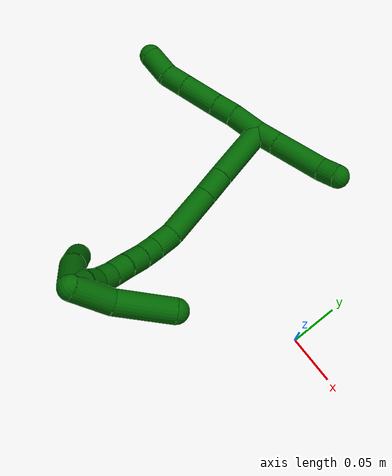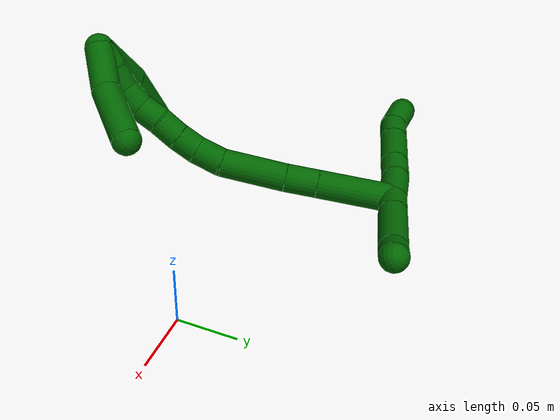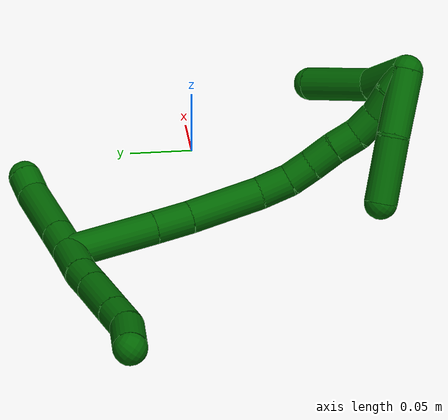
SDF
<sdf version="1.7">
 <world name="default">
  <model name="6">
   <static>0</static>
   <link name="6">
    <collision name="collision-cylinder-e_1_2_8">
     <pose>0.015216 -0.004068 0.005239 0.660273 1.15968 0.441551</pose>
     <geometry><cylinder><radius>0.0125</radius><length>0.033197</length></cylinder></geometry>
     <surface>
      <friction><ode><mu>1.16</mu><mu2>1.16</mu2><slip1>0</slip1><slip2>0</slip2></ode></friction>
      <contact><ode><kp>1e+06</kp><kd>1</kd><max_vel>0</max_vel><min_depth>0.001</min_depth></ode></contact>
     </surface>
    </collision>
    <visual name="visual-cylinder-e_1_2_8">
     <pose>0.015216 -0.004068 0.005239 0.660273 1.15968 0.441551</pose>
     <geometry><cylinder><radius>0.0125</radius><length>0.033197</length></cylinder></geometry>
     <material><ambient>0 0.392157 0.003922 1</ambient></material>
    </visual>
    <collision name="collision-cylinder-e_2_8_9">
     <pose>0.040438 -0.012026 0.014777 0.735477 1.04575 0.437031</pose>
     <geometry><cylinder><radius>0.0125</radius><length>0.02313</length></cylinder></geometry>
     <surface>
      <friction><ode><mu>1.16</mu><mu2>1.16</mu2><slip1>0</slip1><slip2>0</slip2></ode></friction>
      <contact><ode><kp>1e+06</kp><kd>1</kd><max_vel>0</max_vel><min_depth>0.001</min_depth></ode></contact>
     </surface>
    </collision>
    <visual name="visual-cylinder-e_2_8_9">
     <pose>0.040438 -0.012026 0.014777 0.735477 1.04575 0.437031</pose>
     <geometry><cylinder><radius>0.0125</radius><length>0.02313</length></cylinder></geometry>
     <material><ambient>0 0.392157 0.003922 1</ambient></material>
    </visual>
    <collision name="collision-cylinder-e_3_9_10">
     <pose>0.068207 -0.02264 0.026295 0.749903 1.06374 0.455154</pose>
     <geometry><cylinder><radius>0.0125</radius><length>0.040637</length></cylinder></geometry>
     <surface>
      <friction><ode><mu>1.16</mu><mu2>1.16</mu2><slip1>0</slip1><slip2>0</slip2></ode></friction>
      <contact><ode><kp>1e+06</kp><kd>1</kd><max_vel>0</max_vel><min_depth>0.001</min_depth></ode></contact>
     </surface>
    </collision>
    <visual name="visual-cylinder-e_3_9_10">
     <pose>0.068207 -0.02264 0.026295 0.749903 1.06374 0.455154</pose>
     <geometry><cylinder><radius>0.0125</radius><length>0.040637</length></cylinder></geometry>
     <material><ambient>0 0.392157 0.003922 1</ambient></material>
    </visual>
    <collision name="collision-cylinder-e_4_10_11">
     <pose>0.096035 -0.033203 0.037631 0.750495 1.06107 0.454193</pose>
     <geometry><cylinder><radius>0.0125</radius><length>0.023064</length></cylinder></geometry>
     <surface>
      <friction><ode><mu>1.16</mu><mu2>1.16</mu2><slip1>0</slip1><slip2>0</slip2></ode></friction>
      <contact><ode><kp>1e+06</kp><kd>1</kd><max_vel>0</max_vel><min_depth>0.001</min_depth></ode></contact>
     </surface>
    </collision>
    <visual name="visual-cylinder-e_4_10_11">
     <pose>0.096035 -0.033203 0.037631 0.750495 1.06107 0.454193</pose>
     <geometry><cylinder><radius>0.0125</radius><length>0.023064</length></cylinder></geometry>
     <material><ambient>0 0.392157 0.003922 1</ambient></material>
    </visual>
    <collision name="collision-cylinder-e_5_11_6">
     <pose>0.120806 -0.039189 0.04368 0.837805 1.3767 0.702163</pose>
     <geometry><cylinder><radius>0.0125</radius><length>0.029972</length></cylinder></geometry>
     <surface>
      <friction><ode><mu>1.16</mu><mu2>1.16</mu2><slip1>0</slip1><slip2>0</slip2></ode></friction>
      <contact><ode><kp>1e+06</kp><kd>1</kd><max_vel>0</max_vel><min_depth>0.001</min_depth></ode></contact>
     </surface>
    </collision>
    <visual name="visual-cylinder-e_5_11_6">
     <pose>0.120806 -0.039189 0.04368 0.837805 1.3767 0.702163</pose>
     <geometry><cylinder><radius>0.0125</radius><length>0.029972</length></cylinder></geometry>
     <material><ambient>0 0.392157 0.003922 1</ambient></material>
    </visual>
    <collision name="collision-cylinder-e_1_2_12">
     <pose>-0.010552 0.002591 -0.005 -2.66343 -1.08055 2.36962</pose>
     <geometry><cylinder><radius>0.0125</radius><length>0.023921</length></cylinder></geometry>
     <surface>
      <friction><ode><mu>1.16</mu><mu2>1.16</mu2><slip1>0</slip1><slip2>0</slip2></ode></friction>
      <contact><ode><kp>1e+06</kp><kd>1</kd><max_vel>0</max_vel><min_depth>0.001</min_depth></ode></contact>
     </surface>
    </collision>
    <visual name="visual-cylinder-e_1_2_12">
     <pose>-0.010552 0.002591 -0.005 -2.66343 -1.08055 2.36962</pose>
     <geometry><cylinder><radius>0.0125</radius><length>0.023921</length></cylinder></geometry>
     <material><ambient>0 0.392157 0.003922 1</ambient></material>
    </visual>
    <collision name="collision-cylinder-e_2_12_13">
     <pose>-0.045788 0.011277 -0.02171 -2.66172 -1.0797 2.36635</pose>
     <geometry><cylinder><radius>0.0125</radius><length>0.055987</length></cylinder></geometry>
     <surface>
      <friction><ode><mu>1.16</mu><mu2>1.16</mu2><slip1>0</slip1><slip2>0</slip2></ode></friction>
      <contact><ode><kp>1e+06</kp><kd>1</kd><max_vel>0</max_vel><min_depth>0.001</min_depth></ode></contact>
     </surface>
    </collision>
    <visual name="visual-cylinder-e_2_12_13">
     <pose>-0.045788 0.011277 -0.02171 -2.66172 -1.0797 2.36635</pose>
     <geometry><cylinder><radius>0.0125</radius><length>0.055987</length></cylinder></geometry>
     <material><ambient>0 0.392157 0.003922 1</ambient></material>
    </visual>
    <collision name="collision-cylinder-e_3_13_5">
     <pose>-0.078884 0.017557 -0.038912 -3.10798 -0.992124 3.0795</pose>
     <geometry><cylinder><radius>0.0125</radius><length>0.020092</length></cylinder></geometry>
     <surface>
      <friction><ode><mu>1.16</mu><mu2>1.16</mu2><slip1>0</slip1><slip2>0</slip2></ode></friction>
      <contact><ode><kp>1e+06</kp><kd>1</kd><max_vel>0</max_vel><min_depth>0.001</min_depth></ode></contact>
     </surface>
    </collision>
    <visual name="visual-cylinder-e_3_13_5">
     <pose>-0.078884 0.017557 -0.038912 -3.10798 -0.992124 3.0795</pose>
     <geometry><cylinder><radius>0.0125</radius><length>0.020092</length></cylinder></geometry>
     <material><ambient>0 0.392157 0.003922 1</ambient></material>
    </visual>
    <collision name="collision-cylinder-e_1_2_14">
     <pose>-0.014454 -0.021154 0.021222 0.783775 -0.449449 -0.188373</pose>
     <geometry><cylinder><radius>0.0125</radius><length>0.066537</length></cylinder></geometry>
     <surface>
      <friction><ode><mu>1.16</mu><mu2>1.16</mu2><slip1>0</slip1><slip2>0</slip2></ode></friction>
      <contact><ode><kp>1e+06</kp><kd>1</kd><max_vel>0</max_vel><min_depth>0.001</min_depth></ode></contact>
     </surface>
    </collision>
    <visual name="visual-cylinder-e_1_2_14">
     <pose>-0.014454 -0.021154 0.021222 0.783775 -0.449449 -0.188373</pose>
     <geometry><cylinder><radius>0.0125</radius><length>0.066537</length></cylinder></geometry>
     <material><ambient>0 0.392157 0.003922 1</ambient></material>
    </visual>
    <collision name="collision-cylinder-e_2_14_15">
     <pose>-0.035235 -0.051316 0.051371 0.789963 -0.462751 -0.195806</pose>
     <geometry><cylinder><radius>0.0125</radius><length>0.028345</length></cylinder></geometry>
     <surface>
      <friction><ode><mu>1.16</mu><mu2>1.16</mu2><slip1>0</slip1><slip2>0</slip2></ode></friction>
      <contact><ode><kp>1e+06</kp><kd>1</kd><max_vel>0</max_vel><min_depth>0.001</min_depth></ode></contact>
     </surface>
    </collision>
    <visual name="visual-cylinder-e_2_14_15">
     <pose>-0.035235 -0.051316 0.051371 0.789963 -0.462751 -0.195806</pose>
     <geometry><cylinder><radius>0.0125</radius><length>0.028345</length></cylinder></geometry>
     <material><ambient>0 0.392157 0.003922 1</ambient></material>
    </visual>
    <collision name="collision-cylinder-e_3_15_16">
     <pose>-0.054198 -0.079582 0.077268 0.848469 -0.457471 -0.209532</pose>
     <geometry><cylinder><radius>0.0125</radius><length>0.05722</length></cylinder></geometry>
     <surface>
      <friction><ode><mu>1.16</mu><mu2>1.16</mu2><slip1>0</slip1><slip2>0</slip2></ode></friction>
      <contact><ode><kp>1e+06</kp><kd>1</kd><max_vel>0</max_vel><min_depth>0.001</min_depth></ode></contact>
     </surface>
    </collision>
    <visual name="visual-cylinder-e_3_15_16">
     <pose>-0.054198 -0.079582 0.077268 0.848469 -0.457471 -0.209532</pose>
     <geometry><cylinder><radius>0.0125</radius><length>0.05722</length></cylinder></geometry>
     <material><ambient>0 0.392157 0.003922 1</ambient></material>
    </visual>
    <collision name="collision-cylinder-e_4_16_17">
     <pose>-0.070404 -0.108879 0.100252 1.03103 -0.296035 -0.168574</pose>
     <geometry><cylinder><radius>0.0125</radius><length>0.024469</length></cylinder></geometry>
     <surface>
      <friction><ode><mu>1.16</mu><mu2>1.16</mu2><slip1>0</slip1><slip2>0</slip2></ode></friction>
      <contact><ode><kp>1e+06</kp><kd>1</kd><max_vel>0</max_vel><min_depth>0.001</min_depth></ode></contact>
     </surface>
    </collision>
    <visual name="visual-cylinder-e_4_16_17">
     <pose>-0.070404 -0.108879 0.100252 1.03103 -0.296035 -0.168574</pose>
     <geometry><cylinder><radius>0.0125</radius><length>0.024469</length></cylinder></geometry>
     <material><ambient>0 0.392157 0.003922 1</ambient></material>
    </visual>
    <collision name="collision-cylinder-e_5_17_18">
     <pose>-0.076878 -0.127994 0.109343 1.24402 -0.294302 -0.211741</pose>
     <geometry><cylinder><radius>0.0125</radius><length>0.020028</length></cylinder></geometry>
     <surface>
      <friction><ode><mu>1.16</mu><mu2>1.16</mu2><slip1>0</slip1><slip2>0</slip2></ode></friction>
      <contact><ode><kp>1e+06</kp><kd>1</kd><max_vel>0</max_vel><min_depth>0.001</min_depth></ode></contact>
     </surface>
    </collision>
    <visual name="visual-cylinder-e_5_17_18">
     <pose>-0.076878 -0.127994 0.109343 1.24402 -0.294302 -0.211741</pose>
     <geometry><cylinder><radius>0.0125</radius><length>0.020028</length></cylinder></geometry>
     <material><ambient>0 0.392157 0.003922 1</ambient></material>
    </visual>
    <collision name="collision-cylinder-e_6_18_19">
     <pose>-0.08223 -0.147197 0.115072 1.31455 -0.229633 -0.177534</pose>
     <geometry><cylinder><radius>0.0125</radius><length>0.021503</length></cylinder></geometry>
     <surface>
      <friction><ode><mu>1.16</mu><mu2>1.16</mu2><slip1>0</slip1><slip2>0</slip2></ode></friction>
      <contact><ode><kp>1e+06</kp><kd>1</kd><max_vel>0</max_vel><min_depth>0.001</min_depth></ode></contact>
     </surface>
    </collision>
    <visual name="visual-cylinder-e_6_18_19">
     <pose>-0.08223 -0.147197 0.115072 1.31455 -0.229633 -0.177534</pose>
     <geometry><cylinder><radius>0.0125</radius><length>0.021503</length></cylinder></geometry>
     <material><ambient>0 0.392157 0.003922 1</ambient></material>
    </visual>
    <collision name="collision-cylinder-e_7_19_20">
     <pose>-0.087066 -0.166492 0.121213 1.20728 -0.238902 -0.165133</pose>
     <geometry><cylinder><radius>0.0125</radius><length>0.020189</length></cylinder></geometry>
     <surface>
      <friction><ode><mu>1.16</mu><mu2>1.16</mu2><slip1>0</slip1><slip2>0</slip2></ode></friction>
      <contact><ode><kp>1e+06</kp><kd>1</kd><max_vel>0</max_vel><min_depth>0.001</min_depth></ode></contact>
     </surface>
    </collision>
    <visual name="visual-cylinder-e_7_19_20">
     <pose>-0.087066 -0.166492 0.121213 1.20728 -0.238902 -0.165133</pose>
     <geometry><cylinder><radius>0.0125</radius><length>0.020189</length></cylinder></geometry>
     <material><ambient>0 0.392157 0.003922 1</ambient></material>
    </visual>
    <collision name="collision-cylinder-e_8_20_21">
     <pose>-0.091347 -0.185901 0.12575 1.46864 -0.181765 -0.164168</pose>
     <geometry><cylinder><radius>0.0125</radius><length>0.020936</length></cylinder></geometry>
     <surface>
      <friction><ode><mu>1.16</mu><mu2>1.16</mu2><slip1>0</slip1><slip2>0</slip2></ode></friction>
      <contact><ode><kp>1e+06</kp><kd>1</kd><max_vel>0</max_vel><min_depth>0.001</min_depth></ode></contact>
     </surface>
    </collision>
    <visual name="visual-cylinder-e_8_20_21">
     <pose>-0.091347 -0.185901 0.12575 1.46864 -0.181765 -0.164168</pose>
     <geometry><cylinder><radius>0.0125</radius><length>0.020936</length></cylinder></geometry>
     <material><ambient>0 0.392157 0.003922 1</ambient></material>
    </visual>
    <collision name="collision-cylinder-e_9_21_22">
     <pose>-0.093962 -0.206174 0.125092 1.73945 -0.070899 -0.083978</pose>
     <geometry><cylinder><radius>0.0125</radius><length>0.020403</length></cylinder></geometry>
     <surface>
      <friction><ode><mu>1.16</mu><mu2>1.16</mu2><slip1>0</slip1><slip2>0</slip2></ode></friction>
      <contact><ode><kp>1e+06</kp><kd>1</kd><max_vel>0</max_vel><min_depth>0.001</min_depth></ode></contact>
     </surface>
    </collision>
    <visual name="visual-cylinder-e_9_21_22">
     <pose>-0.093962 -0.206174 0.125092 1.73945 -0.070899 -0.083978</pose>
     <geometry><cylinder><radius>0.0125</radius><length>0.020403</length></cylinder></geometry>
     <material><ambient>0 0.392157 0.003922 1</ambient></material>
    </visual>
    <collision name="collision-cylinder-e_10_22_1">
     <pose>-0.096539 -0.226186 0.122561 1.65304 -0.183121 -0.198736</pose>
     <geometry><cylinder><radius>0.0125</radius><length>0.02037</length></cylinder></geometry>
     <surface>
      <friction><ode><mu>1.16</mu><mu2>1.16</mu2><slip1>0</slip1><slip2>0</slip2></ode></friction>
      <contact><ode><kp>1e+06</kp><kd>1</kd><max_vel>0</max_vel><min_depth>0.001</min_depth></ode></contact>
     </surface>
    </collision>
    <visual name="visual-cylinder-e_10_22_1">
     <pose>-0.096539 -0.226186 0.122561 1.65304 -0.183121 -0.198736</pose>
     <geometry><cylinder><radius>0.0125</radius><length>0.02037</length></cylinder></geometry>
     <material><ambient>0 0.392157 0.003922 1</ambient></material>
    </visual>
    <collision name="collision-cylinder-e_1_1_23">
     <pose>-0.10948 -0.21892 0.118501 -1.75636 -0.563464 0.671245</pose>
     <geometry><cylinder><radius>0.0125</radius><length>0.041513</length></cylinder></geometry>
     <surface>
      <friction><ode><mu>1.16</mu><mu2>1.16</mu2><slip1>0</slip1><slip2>0</slip2></ode></friction>
      <contact><ode><kp>1e+06</kp><kd>1</kd><max_vel>0</max_vel><min_depth>0.001</min_depth></ode></contact>
     </surface>
    </collision>
    <visual name="visual-cylinder-e_1_1_23">
     <pose>-0.10948 -0.21892 0.118501 -1.75636 -0.563464 0.671245</pose>
     <geometry><cylinder><radius>0.0125</radius><length>0.041513</length></cylinder></geometry>
     <material><ambient>0 0.392157 0.003922 1</ambient></material>
    </visual>
    <collision name="collision-cylinder-e_2_23_4">
     <pose>-0.135485 -0.180667 0.10143 -2.15317 -0.535332 0.941623</pose>
     <geometry><cylinder><radius>0.0125</radius><length>0.058487</length></cylinder></geometry>
     <surface>
      <friction><ode><mu>1.16</mu><mu2>1.16</mu2><slip1>0</slip1><slip2>0</slip2></ode></friction>
      <contact><ode><kp>1e+06</kp><kd>1</kd><max_vel>0</max_vel><min_depth>0.001</min_depth></ode></contact>
     </surface>
    </collision>
    <visual name="visual-cylinder-e_2_23_4">
     <pose>-0.135485 -0.180667 0.10143 -2.15317 -0.535332 0.941623</pose>
     <geometry><cylinder><radius>0.0125</radius><length>0.058487</length></cylinder></geometry>
     <material><ambient>0 0.392157 0.003922 1</ambient></material>
    </visual>
    <collision name="collision-cylinder-e_1_1_24">
     <pose>-0.083216 -0.218216 0.130857 -1.1008 0.645943 -0.405137</pose>
     <geometry><cylinder><radius>0.0125</radius><length>0.050428</length></cylinder></geometry>
     <surface>
      <friction><ode><mu>1.16</mu><mu2>1.16</mu2><slip1>0</slip1><slip2>0</slip2></ode></friction>
      <contact><ode><kp>1e+06</kp><kd>1</kd><max_vel>0</max_vel><min_depth>0.001</min_depth></ode></contact>
     </surface>
    </collision>
    <visual name="visual-cylinder-e_1_1_24">
     <pose>-0.083216 -0.218216 0.130857 -1.1008 0.645943 -0.405137</pose>
     <geometry><cylinder><radius>0.0125</radius><length>0.050428</length></cylinder></geometry>
     <material><ambient>0 0.392157 0.003922 1</ambient></material>
    </visual>
    <collision name="collision-cylinder-e_2_24_3">
     <pose>-0.057331 -0.180753 0.150885 -1.06097 0.446685 -0.264895</pose>
     <geometry><cylinder><radius>0.0125</radius><length>0.049572</length></cylinder></geometry>
     <surface>
      <friction><ode><mu>1.16</mu><mu2>1.16</mu2><slip1>0</slip1><slip2>0</slip2></ode></friction>
      <contact><ode><kp>1e+06</kp><kd>1</kd><max_vel>0</max_vel><min_depth>0.001</min_depth></ode></contact>
     </surface>
    </collision>
    <visual name="visual-cylinder-e_2_24_3">
     <pose>-0.057331 -0.180753 0.150885 -1.06097 0.446685 -0.264895</pose>
     <geometry><cylinder><radius>0.0125</radius><length>0.049572</length></cylinder></geometry>
     <material><ambient>0 0.392157 0.003922 1</ambient></material>
    </visual>
    <collision name="collision-sphere-3">
     <pose>-0.046625 -0.161242 0.161794 0 -0 0</pose>
     <geometry><sphere><radius>0.0125</radius></sphere></geometry>
     <surface>
      <friction><ode><mu>1.16</mu><mu2>1.16</mu2><slip1>0</slip1><slip2>0</slip2></ode></friction>
      <contact><ode><kp>1e+06</kp><kd>1</kd><max_vel>0</max_vel><min_depth>0.001</min_depth></ode></contact>
     </surface>
    </collision>
    <visual name="visual-sphere-3">
     <pose>-0.046625 -0.161242 0.161794 0 -0 0</pose>
     <geometry><sphere><radius>0.0125</radius></sphere></geometry>
     <material><ambient>0 0.392157 0.003922 1</ambient></material>
    </visual>
    <collision name="collision-sphere-24">
     <pose>-0.068038 -0.200264 0.139976 0 -0 0</pose>
     <geometry><sphere><radius>0.0125</radius></sphere></geometry>
     <surface>
      <friction><ode><mu>1.16</mu><mu2>1.16</mu2><slip1>0</slip1><slip2>0</slip2></ode></friction>
      <contact><ode><kp>1e+06</kp><kd>1</kd><max_vel>0</max_vel><min_depth>0.001</min_depth></ode></contact>
     </surface>
    </collision>
    <visual name="visual-sphere-24">
     <pose>-0.068038 -0.200264 0.139976 0 -0 0</pose>
     <geometry><sphere><radius>0.0125</radius></sphere></geometry>
     <material><ambient>0 0.392157 0.003922 1</ambient></material>
    </visual>
    <collision name="collision-sphere-4">
     <pose>-0.150402 -0.159661 0.087596 0 -0 0</pose>
     <geometry><sphere><radius>0.0125</radius></sphere></geometry>
     <surface>
      <friction><ode><mu>1.16</mu><mu2>1.16</mu2><slip1>0</slip1><slip2>0</slip2></ode></friction>
      <contact><ode><kp>1e+06</kp><kd>1</kd><max_vel>0</max_vel><min_depth>0.001</min_depth></ode></contact>
     </surface>
    </collision>
    <visual name="visual-sphere-4">
     <pose>-0.150402 -0.159661 0.087596 0 -0 0</pose>
     <geometry><sphere><radius>0.0125</radius></sphere></geometry>
     <material><ambient>0 0.392157 0.003922 1</ambient></material>
    </visual>
    <collision name="collision-sphere-23">
     <pose>-0.120567 -0.201673 0.115264 0 -0 0</pose>
     <geometry><sphere><radius>0.0125</radius></sphere></geometry>
     <surface>
      <friction><ode><mu>1.16</mu><mu2>1.16</mu2><slip1>0</slip1><slip2>0</slip2></ode></friction>
      <contact><ode><kp>1e+06</kp><kd>1</kd><max_vel>0</max_vel><min_depth>0.001</min_depth></ode></contact>
     </surface>
    </collision>
    <visual name="visual-sphere-23">
     <pose>-0.120567 -0.201673 0.115264 0 -0 0</pose>
     <geometry><sphere><radius>0.0125</radius></sphere></geometry>
     <material><ambient>0 0.392157 0.003922 1</ambient></material>
    </visual>
    <collision name="collision-sphere-1">
     <pose>-0.098394 -0.236167 0.121739 0 -0 0</pose>
     <geometry><sphere><radius>0.0125</radius></sphere></geometry>
     <surface>
      <friction><ode><mu>1.16</mu><mu2>1.16</mu2><slip1>0</slip1><slip2>0</slip2></ode></friction>
      <contact><ode><kp>1e+06</kp><kd>1</kd><max_vel>0</max_vel><min_depth>0.001</min_depth></ode></contact>
     </surface>
    </collision>
    <visual name="visual-sphere-1">
     <pose>-0.098394 -0.236167 0.121739 0 -0 0</pose>
     <geometry><sphere><radius>0.0125</radius></sphere></geometry>
     <material><ambient>0 0.392157 0.003922 1</ambient></material>
    </visual>
    <collision name="collision-sphere-22">
     <pose>-0.094685 -0.216205 0.123384 0 -0 0</pose>
     <geometry><sphere><radius>0.0125</radius></sphere></geometry>
     <surface>
      <friction><ode><mu>1.16</mu><mu2>1.16</mu2><slip1>0</slip1><slip2>0</slip2></ode></friction>
      <contact><ode><kp>1e+06</kp><kd>1</kd><max_vel>0</max_vel><min_depth>0.001</min_depth></ode></contact>
     </surface>
    </collision>
    <visual name="visual-sphere-22">
     <pose>-0.094685 -0.216205 0.123384 0 -0 0</pose>
     <geometry><sphere><radius>0.0125</radius></sphere></geometry>
     <material><ambient>0 0.392157 0.003922 1</ambient></material>
    </visual>
    <collision name="collision-sphere-21">
     <pose>-0.093239 -0.196143 0.1268 0 -0 0</pose>
     <geometry><sphere><radius>0.0125</radius></sphere></geometry>
     <surface>
      <friction><ode><mu>1.16</mu><mu2>1.16</mu2><slip1>0</slip1><slip2>0</slip2></ode></friction>
      <contact><ode><kp>1e+06</kp><kd>1</kd><max_vel>0</max_vel><min_depth>0.001</min_depth></ode></contact>
     </surface>
    </collision>
    <visual name="visual-sphere-21">
     <pose>-0.093239 -0.196143 0.1268 0 -0 0</pose>
     <geometry><sphere><radius>0.0125</radius></sphere></geometry>
     <material><ambient>0 0.392157 0.003922 1</ambient></material>
    </visual>
    <collision name="collision-sphere-6">
     <pose>0.135511 -0.041337 0.045614 0 -0 0</pose>
     <geometry><sphere><radius>0.0125</radius></sphere></geometry>
     <surface>
      <friction><ode><mu>1.16</mu><mu2>1.16</mu2><slip1>0</slip1><slip2>0</slip2></ode></friction>
      <contact><ode><kp>1e+06</kp><kd>1</kd><max_vel>0</max_vel><min_depth>0.001</min_depth></ode></contact>
     </surface>
    </collision>
    <visual name="visual-sphere-6">
     <pose>0.135511 -0.041337 0.045614 0 -0 0</pose>
     <geometry><sphere><radius>0.0125</radius></sphere></geometry>
     <material><ambient>0 0.392157 0.003922 1</ambient></material>
    </visual>
    <collision name="collision-sphere-11">
     <pose>0.106101 -0.03704 0.041746 0 -0 0</pose>
     <geometry><sphere><radius>0.0125</radius></sphere></geometry>
     <surface>
      <friction><ode><mu>1.16</mu><mu2>1.16</mu2><slip1>0</slip1><slip2>0</slip2></ode></friction>
      <contact><ode><kp>1e+06</kp><kd>1</kd><max_vel>0</max_vel><min_depth>0.001</min_depth></ode></contact>
     </surface>
    </collision>
    <visual name="visual-sphere-11">
     <pose>0.106101 -0.03704 0.041746 0 -0 0</pose>
     <geometry><sphere><radius>0.0125</radius></sphere></geometry>
     <material><ambient>0 0.392157 0.003922 1</ambient></material>
    </visual>
    <collision name="collision-sphere-10">
     <pose>0.085969 -0.029365 0.033515 0 -0 0</pose>
     <geometry><sphere><radius>0.0125</radius></sphere></geometry>
     <surface>
      <friction><ode><mu>1.16</mu><mu2>1.16</mu2><slip1>0</slip1><slip2>0</slip2></ode></friction>
      <contact><ode><kp>1e+06</kp><kd>1</kd><max_vel>0</max_vel><min_depth>0.001</min_depth></ode></contact>
     </surface>
    </collision>
    <visual name="visual-sphere-10">
     <pose>0.085969 -0.029365 0.033515 0 -0 0</pose>
     <geometry><sphere><radius>0.0125</radius></sphere></geometry>
     <material><ambient>0 0.392157 0.003922 1</ambient></material>
    </visual>
    <collision name="collision-sphere-9">
     <pose>0.050445 -0.015916 0.019075 0 -0 0</pose>
     <geometry><sphere><radius>0.0125</radius></sphere></geometry>
     <surface>
      <friction><ode><mu>1.16</mu><mu2>1.16</mu2><slip1>0</slip1><slip2>0</slip2></ode></friction>
      <contact><ode><kp>1e+06</kp><kd>1</kd><max_vel>0</max_vel><min_depth>0.001</min_depth></ode></contact>
     </surface>
    </collision>
    <visual name="visual-sphere-9">
     <pose>0.050445 -0.015916 0.019075 0 -0 0</pose>
     <geometry><sphere><radius>0.0125</radius></sphere></geometry>
     <material><ambient>0 0.392157 0.003922 1</ambient></material>
    </visual>
    <collision name="collision-sphere-2">
     <geometry><sphere><radius>0.0125</radius></sphere></geometry>
     <surface>
      <friction><ode><mu>1.16</mu><mu2>1.16</mu2><slip1>0</slip1><slip2>0</slip2></ode></friction>
      <contact><ode><kp>1e+06</kp><kd>1</kd><max_vel>0</max_vel><min_depth>0.001</min_depth></ode></contact>
     </surface>
    </collision>
    <visual name="visual-sphere-2">
     <geometry><sphere><radius>0.0125</radius></sphere></geometry>
     <material><ambient>0 0.392157 0.003922 1</ambient></material>
    </visual>
    <collision name="collision-sphere-19">
     <pose>-0.084677 -0.157325 0.117726 0 -0 0</pose>
     <geometry><sphere><radius>0.0125</radius></sphere></geometry>
     <surface>
      <friction><ode><mu>1.16</mu><mu2>1.16</mu2><slip1>0</slip1><slip2>0</slip2></ode></friction>
      <contact><ode><kp>1e+06</kp><kd>1</kd><max_vel>0</max_vel><min_depth>0.001</min_depth></ode></contact>
     </surface>
    </collision>
    <visual name="visual-sphere-19">
     <pose>-0.084677 -0.157325 0.117726 0 -0 0</pose>
     <geometry><sphere><radius>0.0125</radius></sphere></geometry>
     <material><ambient>0 0.392157 0.003922 1</ambient></material>
    </visual>
    <collision name="collision-sphere-8">
     <pose>0.030431 -0.008137 0.010478 0 -0 0</pose>
     <geometry><sphere><radius>0.0125</radius></sphere></geometry>
     <surface>
      <friction><ode><mu>1.16</mu><mu2>1.16</mu2><slip1>0</slip1><slip2>0</slip2></ode></friction>
      <contact><ode><kp>1e+06</kp><kd>1</kd><max_vel>0</max_vel><min_depth>0.001</min_depth></ode></contact>
     </surface>
    </collision>
    <visual name="visual-sphere-8">
     <pose>0.030431 -0.008137 0.010478 0 -0 0</pose>
     <geometry><sphere><radius>0.0125</radius></sphere></geometry>
     <material><ambient>0 0.392157 0.003922 1</ambient></material>
    </visual>
    <collision name="collision-sphere-12">
     <pose>-0.021103 0.005183 -0.01 0 -0 0</pose>
     <geometry><sphere><radius>0.0125</radius></sphere></geometry>
     <surface>
      <friction><ode><mu>1.16</mu><mu2>1.16</mu2><slip1>0</slip1><slip2>0</slip2></ode></friction>
      <contact><ode><kp>1e+06</kp><kd>1</kd><max_vel>0</max_vel><min_depth>0.001</min_depth></ode></contact>
     </surface>
    </collision>
    <visual name="visual-sphere-12">
     <pose>-0.021103 0.005183 -0.01 0 -0 0</pose>
     <geometry><sphere><radius>0.0125</radius></sphere></geometry>
     <material><ambient>0 0.392157 0.003922 1</ambient></material>
    </visual>
    <collision name="collision-sphere-13">
     <pose>-0.070473 0.017372 -0.033421 0 -0 0</pose>
     <geometry><sphere><radius>0.0125</radius></sphere></geometry>
     <surface>
      <friction><ode><mu>1.16</mu><mu2>1.16</mu2><slip1>0</slip1><slip2>0</slip2></ode></friction>
      <contact><ode><kp>1e+06</kp><kd>1</kd><max_vel>0</max_vel><min_depth>0.001</min_depth></ode></contact>
     </surface>
    </collision>
    <visual name="visual-sphere-13">
     <pose>-0.070473 0.017372 -0.033421 0 -0 0</pose>
     <geometry><sphere><radius>0.0125</radius></sphere></geometry>
     <material><ambient>0 0.392157 0.003922 1</ambient></material>
    </visual>
    <collision name="collision-sphere-5">
     <pose>-0.087294 0.017741 -0.044403 0 -0 0</pose>
     <geometry><sphere><radius>0.0125</radius></sphere></geometry>
     <surface>
      <friction><ode><mu>1.16</mu><mu2>1.16</mu2><slip1>0</slip1><slip2>0</slip2></ode></friction>
      <contact><ode><kp>1e+06</kp><kd>1</kd><max_vel>0</max_vel><min_depth>0.001</min_depth></ode></contact>
     </surface>
    </collision>
    <visual name="visual-sphere-5">
     <pose>-0.087294 0.017741 -0.044403 0 -0 0</pose>
     <geometry><sphere><radius>0.0125</radius></sphere></geometry>
     <material><ambient>0 0.392157 0.003922 1</ambient></material>
    </visual>
    <collision name="collision-sphere-14">
     <pose>-0.028908 -0.042307 0.042445 0 -0 0</pose>
     <geometry><sphere><radius>0.0125</radius></sphere></geometry>
     <surface>
      <friction><ode><mu>1.16</mu><mu2>1.16</mu2><slip1>0</slip1><slip2>0</slip2></ode></friction>
      <contact><ode><kp>1e+06</kp><kd>1</kd><max_vel>0</max_vel><min_depth>0.001</min_depth></ode></contact>
     </surface>
    </collision>
    <visual name="visual-sphere-14">
     <pose>-0.028908 -0.042307 0.042445 0 -0 0</pose>
     <geometry><sphere><radius>0.0125</radius></sphere></geometry>
     <material><ambient>0 0.392157 0.003922 1</ambient></material>
    </visual>
    <collision name="collision-sphere-15">
     <pose>-0.041562 -0.060324 0.060298 0 -0 0</pose>
     <geometry><sphere><radius>0.0125</radius></sphere></geometry>
     <surface>
      <friction><ode><mu>1.16</mu><mu2>1.16</mu2><slip1>0</slip1><slip2>0</slip2></ode></friction>
      <contact><ode><kp>1e+06</kp><kd>1</kd><max_vel>0</max_vel><min_depth>0.001</min_depth></ode></contact>
     </surface>
    </collision>
    <visual name="visual-sphere-15">
     <pose>-0.041562 -0.060324 0.060298 0 -0 0</pose>
     <geometry><sphere><radius>0.0125</radius></sphere></geometry>
     <material><ambient>0 0.392157 0.003922 1</ambient></material>
    </visual>
    <collision name="collision-sphere-16">
     <pose>-0.066835 -0.09884 0.094238 0 -0 0</pose>
     <geometry><sphere><radius>0.0125</radius></sphere></geometry>
     <surface>
      <friction><ode><mu>1.16</mu><mu2>1.16</mu2><slip1>0</slip1><slip2>0</slip2></ode></friction>
      <contact><ode><kp>1e+06</kp><kd>1</kd><max_vel>0</max_vel><min_depth>0.001</min_depth></ode></contact>
     </surface>
    </collision>
    <visual name="visual-sphere-16">
     <pose>-0.066835 -0.09884 0.094238 0 -0 0</pose>
     <geometry><sphere><radius>0.0125</radius></sphere></geometry>
     <material><ambient>0 0.392157 0.003922 1</ambient></material>
    </visual>
    <collision name="collision-sphere-17">
     <pose>-0.073973 -0.118917 0.106266 0 -0 0</pose>
     <geometry><sphere><radius>0.0125</radius></sphere></geometry>
     <surface>
      <friction><ode><mu>1.16</mu><mu2>1.16</mu2><slip1>0</slip1><slip2>0</slip2></ode></friction>
      <contact><ode><kp>1e+06</kp><kd>1</kd><max_vel>0</max_vel><min_depth>0.001</min_depth></ode></contact>
     </surface>
    </collision>
    <visual name="visual-sphere-17">
     <pose>-0.073973 -0.118917 0.106266 0 -0 0</pose>
     <geometry><sphere><radius>0.0125</radius></sphere></geometry>
     <material><ambient>0 0.392157 0.003922 1</ambient></material>
    </visual>
    <collision name="collision-sphere-18">
     <pose>-0.079783 -0.13707 0.112419 0 -0 0</pose>
     <geometry><sphere><radius>0.0125</radius></sphere></geometry>
     <surface>
      <friction><ode><mu>1.16</mu><mu2>1.16</mu2><slip1>0</slip1><slip2>0</slip2></ode></friction>
      <contact><ode><kp>1e+06</kp><kd>1</kd><max_vel>0</max_vel><min_depth>0.001</min_depth></ode></contact>
     </surface>
    </collision>
    <visual name="visual-sphere-18">
     <pose>-0.079783 -0.13707 0.112419 0 -0 0</pose>
     <geometry><sphere><radius>0.0125</radius></sphere></geometry>
     <material><ambient>0 0.392157 0.003922 1</ambient></material>
    </visual>
    <collision name="collision-sphere-20">
     <pose>-0.089455 -0.175659 0.1247 0 -0 0</pose>
     <geometry><sphere><radius>0.0125</radius></sphere></geometry>
     <surface>
      <friction><ode><mu>1.16</mu><mu2>1.16</mu2><slip1>0</slip1><slip2>0</slip2></ode></friction>
      <contact><ode><kp>1e+06</kp><kd>1</kd><max_vel>0</max_vel><min_depth>0.001</min_depth></ode></contact>
     </surface>
    </collision>
    <visual name="visual-sphere-20">
     <pose>-0.089455 -0.175659 0.1247 0 -0 0</pose>
     <geometry><sphere><radius>0.0125</radius></sphere></geometry>
     <material><ambient>0 0.392157 0.003922 1</ambient></material>
    </visual>
    <inertial>
     <pose>-0.042009 -0.098297 0.068147 0 -0 0</pose>
     <mass>0.75</mass>
     <inertia><ixx>9.3e-05</ixx><ixy>0</ixy><ixz>0</ixz><iyy>9.3e-05</iyy><iyz>0</iyz><izz>4e-05</izz></inertia>
    </inertial>
   </link>
   <pose>-0.193457 0.109684 0.014006 -2.24 0.043515 2.94555</pose>
  </model>
 </world>
</sdf>
